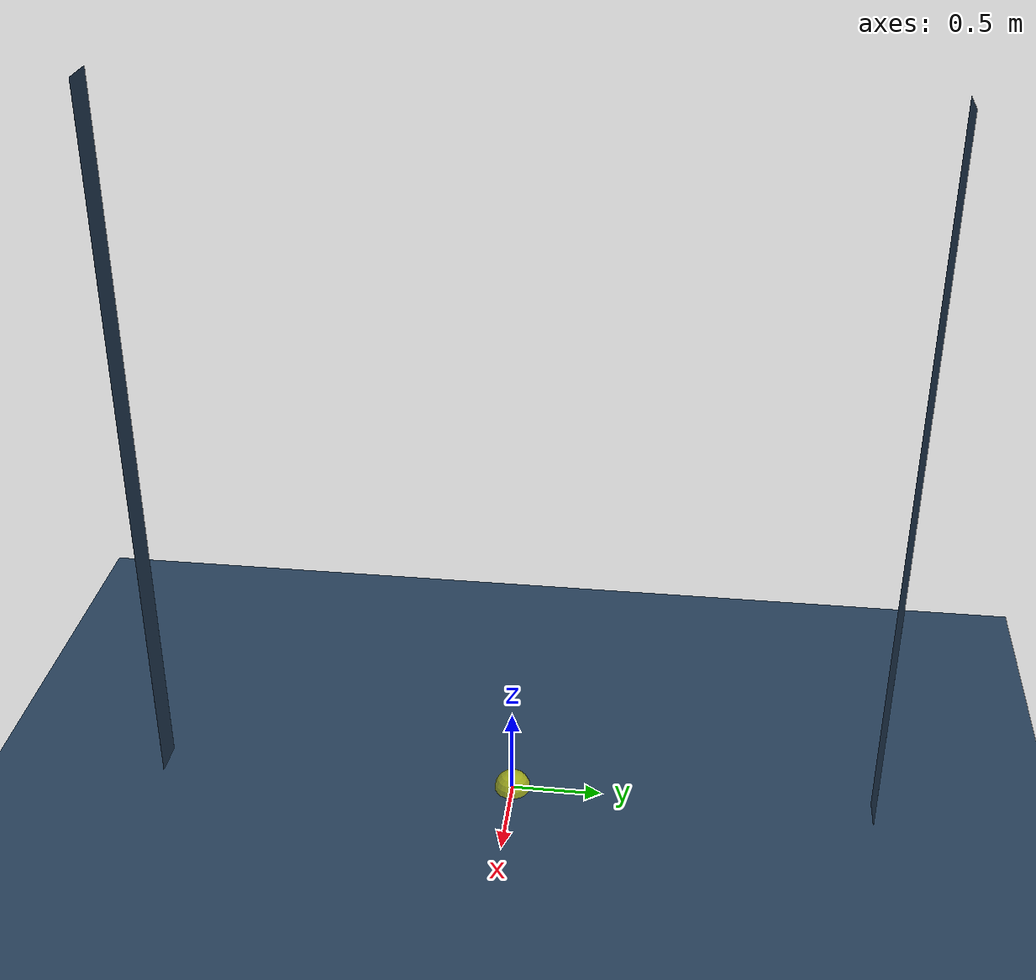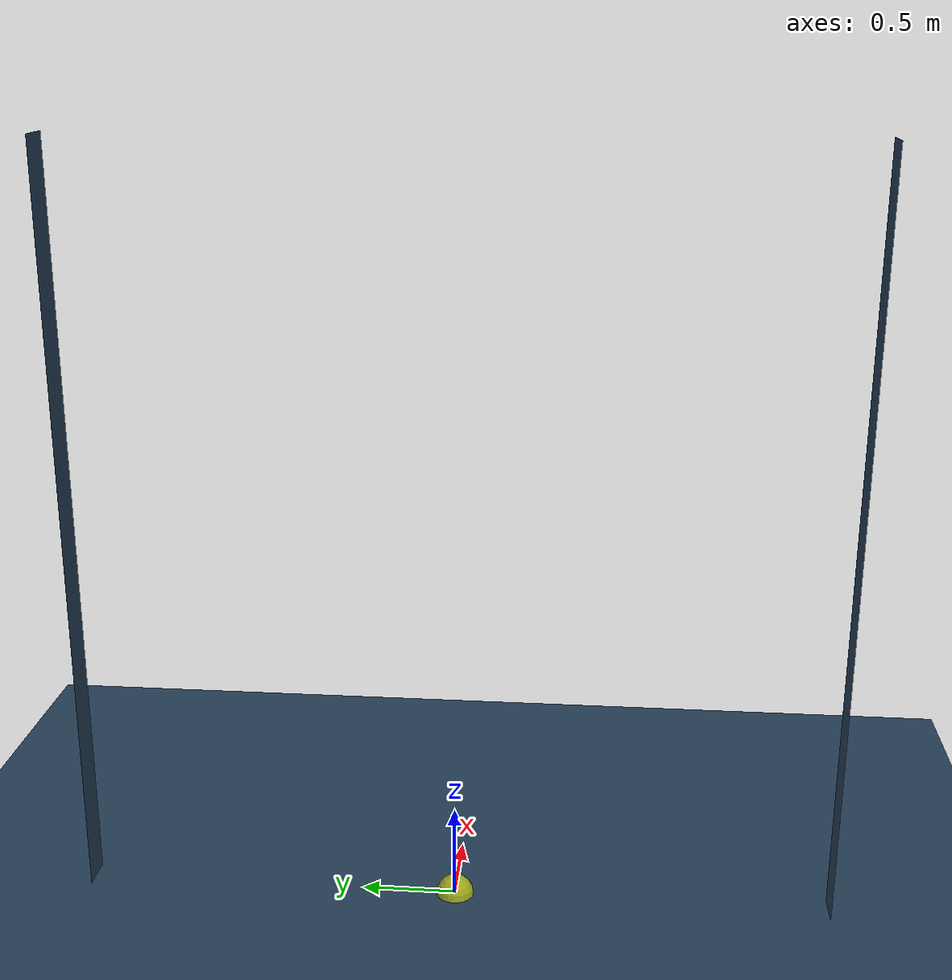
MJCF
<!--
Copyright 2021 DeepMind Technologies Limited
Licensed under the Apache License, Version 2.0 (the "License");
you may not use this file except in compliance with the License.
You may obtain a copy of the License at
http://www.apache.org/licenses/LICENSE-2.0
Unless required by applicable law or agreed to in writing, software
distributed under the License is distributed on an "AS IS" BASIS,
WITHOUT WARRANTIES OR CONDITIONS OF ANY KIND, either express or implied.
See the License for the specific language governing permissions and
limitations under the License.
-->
<mujoco model="Tennis serve">
  <visual>
    <map force="0.1" zfar="30"/>
    <rgba haze="0.15 0.25 0.35 1"/>
      <!--offwidth="2560" offheight="1440"-->
    <global
      elevation="20"
      azimuth="10"
      />
    <headlight ambient=".8 .8 .8" specular=".8 .8 .8"/>
  </visual>

  <statistic center="0 0 0.7"/>

  <asset>
    <texture type="skybox" builtin="gradient" rgb1=".3 .5 .7" rgb2="0 0 0"
      width="32" height="512"/>
    <texture name="grid" type="2d" builtin="checker" width="512" height="512"
      rgb1=".1 .2 .3" rgb2=".2 .3 .4"/>
    <material name="grid" texture="grid" texrepeat="1 1" texuniform="true"
      reflectance=".2"/>
    <texture name="obj" type="cube" builtin="flat" mark="cross" width="128"
      height="128" rgb1="0.8 0.6 0.4" rgb2="0.8 0.6 0.4" markrgb="1 1 1"
      random="0.01"/>
    <material name="obj" texture="obj" texuniform="true" rgba="0.8 0.6 .4 1"/>
  </asset>

  <worldbody>
    <geom name="floor" size="3 3 3" type="plane" material="grid"
      condim="3"/>
    <body name="wall" pos="0 0 0" xyaxes="1 0 0 0 0 1">
      <geom name="rwall2" pos = "0 2 -2" size=".1 2 .05" type="plane"
        material="grid" condim="3"/>
    </body>
    <body name="lwall" pos="0 0 0" xyaxes="-1 0 0 0 0 1">
      <geom name="lwall2" pos = "0 2 -2" size=".1 2 .05" type="plane"
        material="grid" condim="3"/>
    </body>
    <body name="ceil" pos="0 0 0" xyaxes="-1 0 0 0 1 0">
      <geom name="ceil2" pos = "0 0 -3" size=".1 2 .05" type="plane"
        material="grid" condim="3"/>
    </body>
    <camera name="forward" pos="9 0 0" xyaxes="0 1 0 0 0 1"/>
    <site name="target" pos="0 0 0" size=".1" rgba="1 1 0 .6"/>

        <!--material="obj" condim="3" friction="1 0.005 0.0001"-->

        <!--material="obj" condim="3" rgba=".7 0 0 1"-->
        <!--material="obj" condim="3" friction="1 0.005 0.0001" rgba=".7 0 0 1"-->
        <!--material="obj" condim="3" friction="1 0.005 0.0001" rgba=".7 0 0 1"-->

  </worldbody>
</mujoco>
